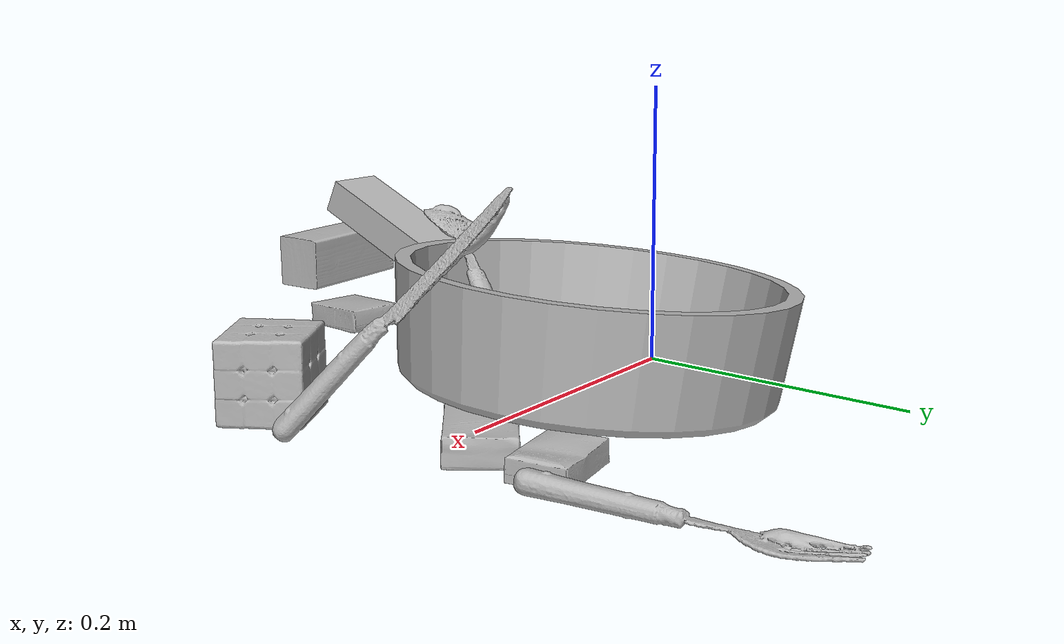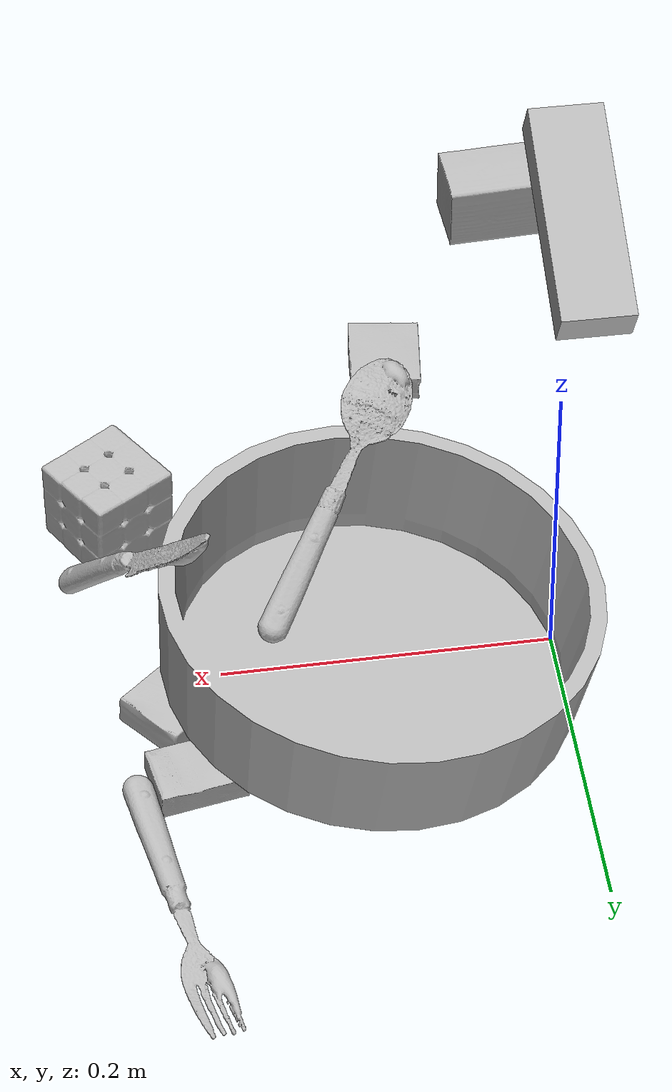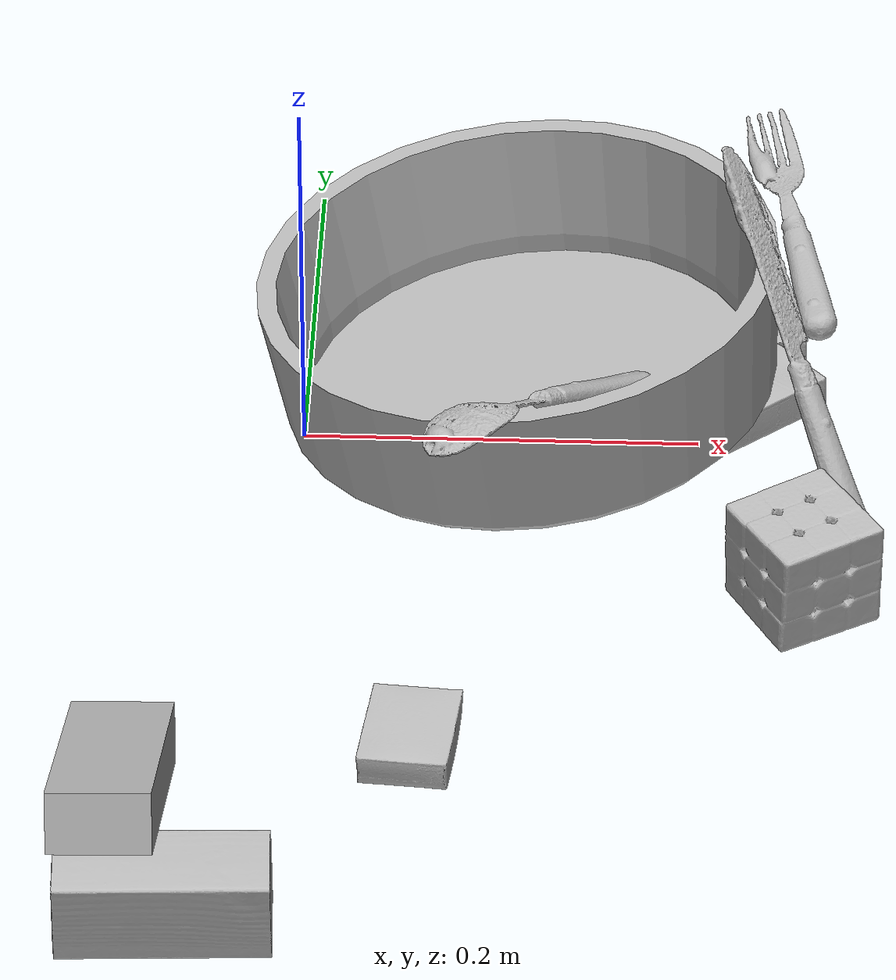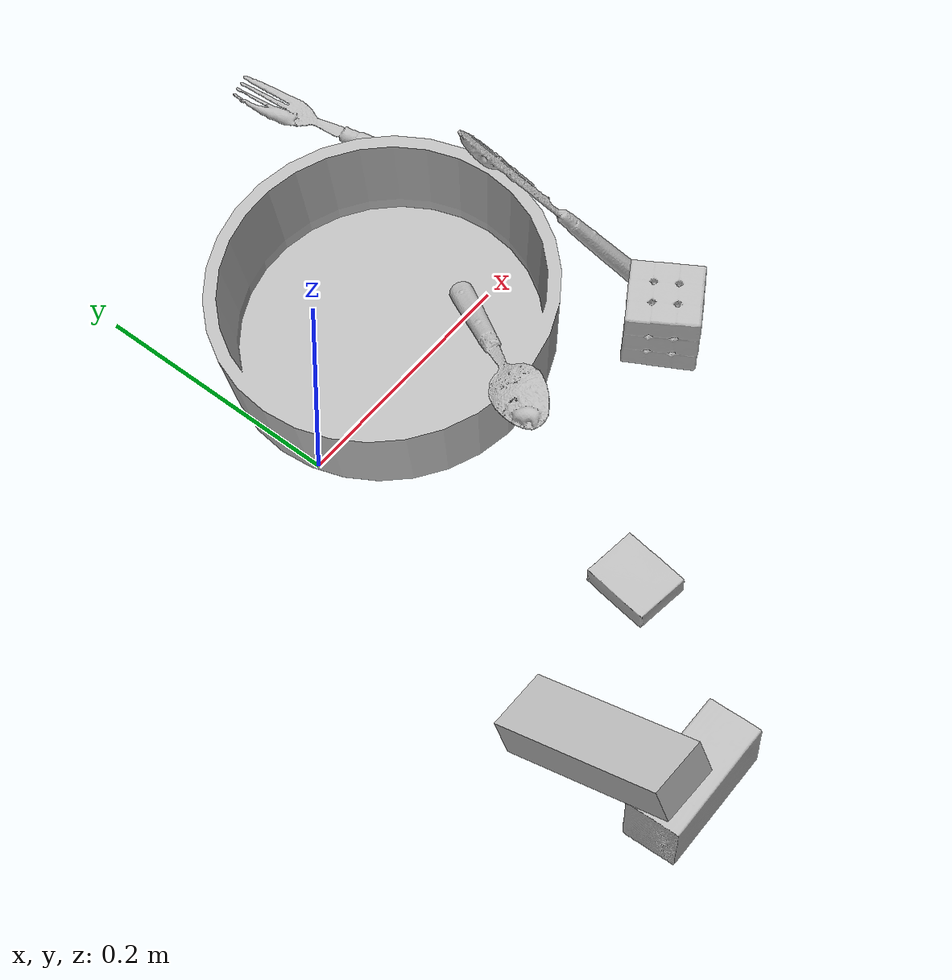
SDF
<sdf version="1.4">
  <world name="default">
    <light name="light1" type="point">
      <pose>0 0 1 0 0 0</pose>
      <diffuse>3 3 3 1</diffuse>
      <specular>3 3 3 1</specular>
    </light>
    <light name="light2" type="point">
      <pose>0 0.5 2 0 0 0</pose>
      <diffuse>1 1 1 1</diffuse>
      <specular>1 1 1 1</specular>
    </light>
    <light name="light3" type="point">
      <pose>0 0.5 2 0 0 0</pose>
      <diffuse>3 3 3 1</diffuse>
      <specular>3 3 3 1</specular>
    </light>
    <scene>
      <ambient>0.7 0.7 0.7</ambient>
    </scene>
    <model name="box11">
      <link name="link_box11">
        <collision name="default">
          <geometry>
            <mesh>
              <uri>model://cracker_box/collision_meshes/collision.obj</uri>
              <scale>0.25 0.25 0.25</scale>
            </mesh>
          </geometry>
          <surface>
            <friction>
              <ode>
                <mu>0.5</mu>
                <mu2>0.5</mu2>
              </ode>
            </friction>
          <contact>
        <ode>
            <max_vel>0</max_vel>
            <min_depth>0.0001</min_depth>
            <kp>1e8</kp>
        </ode>
    </contact></surface>
        </collision>
        <visual name="default">
          <geometry>
            <mesh>
              <uri>model://cracker_box/visual_meshes/visual.dae</uri>
              <scale>0.25 0.25 0.25</scale>
            </mesh>
          </geometry>
        </visual>
        <inertial>
          <mass>0.04448898881673813</mass>
          <pose>0.00023660270380787551 6.358561950037256e-05 -0.000425738311605528 -0.00031620780372907927 -0.011106488668730609 0.002546795468482302</pose>
          <inertia>
            <ixx>7.0725087e-06</ixx>
            <iyy>1.1678099e-05</iyy>
            <izz>1.666572e-05</izz>
            <ixy>0</ixy>
            <ixz>0</ixz>
            <iyz>0</iyz>
          </inertia>
        </inertial>
      </link>
      <pose>0.22526301443576813 0.08326109498739243 0.009096021763980389 -0.014049653979608449 -0.005015667160622497 -2.9828597985507828</pose>
    </model>
    <model name="box12">
      <link name="link_box12">
        <collision name="default">
          <geometry>
            <mesh>
              <uri>model://wood_block/collision_meshes/collision.obj</uri>
              <scale>0.5 0.5 0.5</scale>
            </mesh>
          </geometry>
          <surface>
            <friction>
              <ode>
                <mu>0.5</mu>
                <mu2>0.5</mu2>
              </ode>
            </friction>
          <contact>
        <ode>
            <max_vel>0</max_vel>
            <min_depth>0.0001</min_depth>
            <kp>1e8</kp>
        </ode>
    </contact></surface>
        </collision>
        <visual name="default">
          <geometry>
            <mesh>
              <uri>model://wood_block/visual_meshes/visual.dae</uri>
              <scale>0.5 0.5 0.5</scale>
            </mesh>
          </geometry>
        </visual>
        <inertial>
          <mass>0.30308207869529724</mass>
          <pose>-2.906657982748584e-06 -0.000285404734313488 0.00013204291462898254 -0.05220975528484064 -0.0051926956083073895 -0.006861380255216688</pose>
          <inertia>
            <ixx>0.00010139242</ixx>
            <iyy>0.00032029866</iyy>
            <izz>0.0003191006</izz>
            <ixy>0</ixy>
            <ixz>0</ixz>
            <iyz>0</iyz>
          </inertia>
        </inertial>
      </link>
      <pose>-0.04729507490992546 -0.37659797072410583 0.022629255428910255 -0.005209092435365106 0.005719671021204616 -3.095439327598432</pose>
    </model>
    <model name="box13">
      <link name="link_box13">
        <collision name="default">
          <geometry>
            <mesh>
              <uri>model://pudding_box/collision_meshes/collision.obj</uri>
              <scale>0.5 0.5 0.5</scale>
            </mesh>
          </geometry>
          <surface>
            <friction>
              <ode>
                <mu>0.5</mu>
                <mu2>0.5</mu2>
              </ode>
            </friction>
          <contact>
        <ode>
            <max_vel>0</max_vel>
            <min_depth>0.0001</min_depth>
            <kp>1e8</kp>
        </ode>
    </contact></surface>
        </collision>
        <visual name="default">
          <geometry>
            <mesh>
              <uri>model://pudding_box/visual_meshes/visual.dae</uri>
              <scale>0.5 0.5 0.5</scale>
            </mesh>
          </geometry>
        </visual>
        <inertial>
          <mass>0.06630203872919083</mass>
          <pose>0.00024474109522998333 0.00040339428232982755 -0.00025944141088984907 0.0052131027026664865 -0.006603797821229493 0.02007983447369903</pose>
          <inertia>
            <ixx>1.873776e-05</ixx>
            <iyy>1.2606899e-05</iyy>
            <izz>2.7671198e-05</izz>
            <ixy>0</ixy>
            <ixz>0</ixz>
            <iyz>0</iyz>
          </inertia>
        </inertial>
      </link>
      <pose>0.06375139951705933 -0.24378252029418945 0.00986290443688631 0.022348481552809264 -0.01139172214365909 -0.11774550367075165</pose>
    </model>
    <model name="box21">
      <link name="link_box21">
        <collision name="default">
          <geometry>
            <mesh>
              <uri>model://sugar_box/collision_meshes/collision.obj</uri>
              <scale>0.5 0.5 0.5</scale>
            </mesh>
          </geometry>
          <surface>
            <friction>
              <ode>
                <mu>0.5</mu>
                <mu2>0.5</mu2>
              </ode>
            </friction>
          <contact>
        <ode>
            <max_vel>0</max_vel>
            <min_depth>0.0001</min_depth>
            <kp>1e8</kp>
        </ode>
    </contact></surface>
        </collision>
        <visual name="default">
          <geometry>
            <mesh>
              <uri>model://sugar_box/visual_meshes/visual.dae</uri>
              <scale>0.5 0.5 0.5</scale>
            </mesh>
          </geometry>
        </visual>
        <inertial>
          <mass>0.09398066252470016</mass>
          <pose>0.0005171863595023751 1.924554817378521e-05 -0.00018182402709499002 -0.00040462650409139634 0.0010506636387973133 0.002615378555960767</pose>
          <inertia>
            <ixx>1.9576108e-05</ixx>
            <iyy>6.3274e-05</iyy>
            <izz>7.574653e-05</izz>
            <ixy>0</ixy>
            <ixz>0</ixz>
            <iyz>0</iyz>
          </inertia>
        </inertial>
      </link>
      <pose>0.21683014929294586 0.01870577782392502 0.011847025714814663 0.03882846532331228 -0.003918707348371753 -2.448475955229294</pose>
    </model>
    <model name="box22">
      <link name="link_box22">
        <collision name="default">
          <geometry>
            <mesh>
              <uri>model://jenga/collision_meshes/collision.obj</uri>
              <scale>1.0 1.0 1.0</scale>
            </mesh>
          </geometry>
          <surface>
            <friction>
              <ode>
                <mu>0.5</mu>
                <mu2>0.5</mu2>
              </ode>
            </friction>
          <contact>
        <ode>
            <max_vel>0</max_vel>
            <min_depth>0.0001</min_depth>
            <kp>1e8</kp>
        </ode>
    </contact></surface>
        </collision>
        <visual name="default">
          <geometry>
            <mesh>
              <uri>model://jenga/visual_meshes/visual.dae</uri>
              <scale>1.0 1.0 1.0</scale>
            </mesh>
          </geometry>
        </visual>
        <inertial>
          <mass>0.2620435655117035</mass>
          <pose>-2.5028555228345795e-07 -0.0001025000965455547 -4.092339804628864e-05 0.0 -7.342154049184251e-07 0.0</pose>
          <inertia>
            <ixx>7.251381e-05</ixx>
            <iyy>0.0004913516</iyy>
            <izz>0.00052455964</izz>
            <ixy>0</ixy>
            <ixz>0</ixz>
            <iyz>0</iyz>
          </inertia>
        </inertial>
      </link>
      <pose>-0.07483096420764923 -0.3178999423980713 0.044029153883457184 -0.021757285938397486 0.416080597981239 1.566524424585944</pose>
    </model>
    <model name="box23">
      <link name="link_box23">
        <collision name="default">
          <geometry>
            <mesh>
              <uri>model://rubiks_cube/collision_meshes/collision.obj</uri>
              <scale>1.0 1.0 1.0</scale>
            </mesh>
          </geometry>
          <surface>
            <friction>
              <ode>
                <mu>0.5</mu>
                <mu2>0.5</mu2>
              </ode>
            </friction>
          <contact>
        <ode>
            <max_vel>0</max_vel>
            <min_depth>0.0001</min_depth>
            <kp>1e8</kp>
        </ode>
    </contact></surface>
        </collision>
        <visual name="default">
          <geometry>
            <mesh>
              <uri>model://rubiks_cube/visual_meshes/visual.dae</uri>
              <scale>1.0 1.0 1.0</scale>
            </mesh>
          </geometry>
        </visual>
        <inertial>
          <mass>0.1897622048854828</mass>
          <pose>2.6721043468569405e-05 5.256967051536776e-05 -7.264316082000732e-06 -0.054673156626660294 -0.09814014504853939 -0.034453657529750985</pose>
          <inertia>
            <ixx>0.00010485636</ixx>
            <iyy>0.00010436737</iyy>
            <izz>0.000105725274</izz>
            <ixy>0</ixy>
            <ixz>0</ixz>
            <iyz>0</iyz>
          </inertia>
        </inertial>
      </link>
      <pose>0.25285229086875916 -0.1257898211479187 0.02867894247174263 -4.41812729742838e-06 -1.8102751034477823e-06 -1.0105846829812095</pose>
    </model>
    <model name="plate1">
      <link name="link_plate1">
        <collision name="default">
          <geometry>
            <mesh>
              <uri>model://pan_tefal/collision_meshes/collision.obj</uri>
              <scale>1.0 1.0 1.0</scale>
            </mesh>
          </geometry>
          <surface>
            <friction>
              <ode>
                <mu>0.5</mu>
                <mu2>0.5</mu2>
              </ode>
            </friction>
          <contact>
        <ode>
            <max_vel>0</max_vel>
            <min_depth>0.0001</min_depth>
            <kp>1e8</kp>
        </ode>
    </contact></surface>
        </collision>
        <visual name="default">
          <geometry>
            <mesh>
              <uri>model://pan_tefal/visual_meshes/visual.dae</uri>
              <scale>1.0 1.0 1.0</scale>
            </mesh>
          </geometry>
        </visual>
        <inertial>
          <mass>0.8768928050994873</mass>
          <pose>-0.00018002584693022072 3.279091833974235e-05 -0.008514934219419956 0.0008190272128915226 -0.0003301349770144462 -0.3318573305948388</pose>
          <inertia>
            <ixx>0.0060531492</ixx>
            <iyy>0.006092174</iyy>
            <izz>0.011142679</izz>
            <ixy>0</ixy>
            <ixz>0</ixz>
            <iyz>0</iyz>
          </inertia>
        </inertial>
      </link>
      <pose>0.11077217757701874 0.02610051818192005 0.051894187927246094 -0.11723806768517928 2.6758697491680847e-05 1.2381436576049611</pose>
    </model>
    <model name="silverware1">
      <link name="link_silverware1">
        <collision name="default">
          <geometry>
            <mesh>
              <uri>model://spoon/collision_meshes/collision.obj</uri>
              <scale>1.0 1.0 1.0</scale>
            </mesh>
          </geometry>
          <surface>
            <friction>
              <ode>
                <mu>0.5</mu>
                <mu2>0.5</mu2>
              </ode>
            </friction>
          <contact>
        <ode>
            <max_vel>0</max_vel>
            <min_depth>0.0001</min_depth>
            <kp>1e8</kp>
        </ode>
    </contact></surface>
        </collision>
        <visual name="default">
          <geometry>
            <mesh>
              <uri>model://spoon/visual_meshes/visual.dae</uri>
              <scale>1.0 1.0 1.0</scale>
            </mesh>
          </geometry>
        </visual>
        <inertial>
          <mass>0.030811671167612076</mass>
          <pose>-0.005526314955204725 -0.0016034170985221863 -0.0007271655485965312 0.03521832474385929 -0.03906585488360169 0.0061506134218646934</pose>
          <inertia>
            <ixx>1.713795e-06</ixx>
            <iyy>0.000117237374</iyy>
            <izz>0.00011808256</izz>
            <ixy>0</ixy>
            <ixz>0</ixz>
            <iyz>0</iyz>
          </inertia>
        </inertial>
      </link>
      <pose>0.12022384256124496 -0.06541094183921814 0.07463010400533676 -2.836166031846938 -0.4623003482991411 -2.183904660128357</pose>
    </model>
    <model name="silverware2">
      <link name="link_silverware2">
        <collision name="default">
          <geometry>
            <mesh>
              <uri>model://fork/collision_meshes/collision.obj</uri>
              <scale>1.0 1.0 1.0</scale>
            </mesh>
          </geometry>
          <surface>
            <friction>
              <ode>
                <mu>0.5</mu>
                <mu2>0.5</mu2>
              </ode>
            </friction>
          <contact>
        <ode>
            <max_vel>0</max_vel>
            <min_depth>0.0001</min_depth>
            <kp>1e8</kp>
        </ode>
    </contact></surface>
        </collision>
        <visual name="default">
          <geometry>
            <mesh>
              <uri>model://fork/visual_meshes/visual.dae</uri>
              <scale>1.0 1.0 1.0</scale>
            </mesh>
          </geometry>
        </visual>
        <inertial>
          <mass>0.016358599066734314</mass>
          <pose>-0.029570044949650764 0.00046588238910771906 0.0003218862693756819 -0.013550710307666105 -0.010977838412833367 0.014453905587424366</pose>
          <inertia>
            <ixx>5.7346136e-07</ixx>
            <iyy>4.270759e-05</iyy>
            <izz>4.29641e-05</izz>
            <ixy>0</ixy>
            <ixz>0</ixz>
            <iyz>0</iyz>
          </inertia>
        </inertial>
      </link>
      <pose>0.24742799997329712 0.1795317828655243 0.0053299302235245705 -0.052072254032738755 0.04515968659206172 1.7200520004963629</pose>
    </model>
    <model name="silverware3">
      <link name="link_silverware3">
        <collision name="default">
          <geometry>
            <mesh>
              <uri>model://knife/collision_meshes/collision.obj</uri>
              <scale>1.0 1.0 1.0</scale>
            </mesh>
          </geometry>
          <surface>
            <friction>
              <ode>
                <mu>0.5</mu>
                <mu2>0.5</mu2>
              </ode>
            </friction>
          <contact>
        <ode>
            <max_vel>0</max_vel>
            <min_depth>0.0001</min_depth>
            <kp>1e8</kp>
        </ode>
    </contact></surface>
        </collision>
        <visual name="default">
          <geometry>
            <mesh>
              <uri>model://knife/visual_meshes/visual.dae</uri>
              <scale>1.0 1.0 1.0</scale>
            </mesh>
          </geometry>
        </visual>
        <inertial>
          <mass>0.02715744450688362</mass>
          <pose>-0.023785259574651718 0.0015275124460458755 5.062024501967244e-05 0.07304743927496513 0.01724841757037888 -0.007409820832494391</pose>
          <inertia>
            <ixx>7.708383e-07</ixx>
            <iyy>0.00010433449</iyy>
            <izz>0.00010458276</izz>
            <ixy>0</ixy>
            <ixz>0</ixz>
            <iyz>0</iyz>
          </inertia>
        </inertial>
      </link>
      <pose>0.24786122143268585 -0.022684037685394287 0.0798744261264801 0.43438180695877804 -0.8175683257846441 2.079556412894127</pose>
    </model>
  <physics type="ode">
      <max_contacts>50</max_contacts>
      <ode>
        <solver>
          <type>quick</type>
          <iters>75</iters>
        </solver>
        <constraints>
          <contact_max_correcting_vel>0</contact_max_correcting_vel>
          <contact_surface_layer>0</contact_surface_layer>
        </constraints>
      </ode>
    </physics></world>
</sdf>
